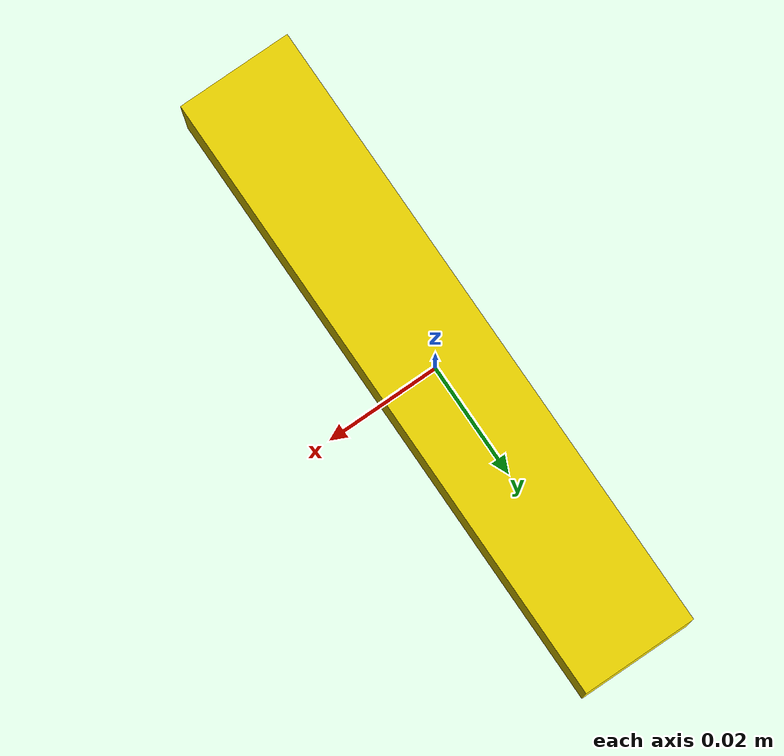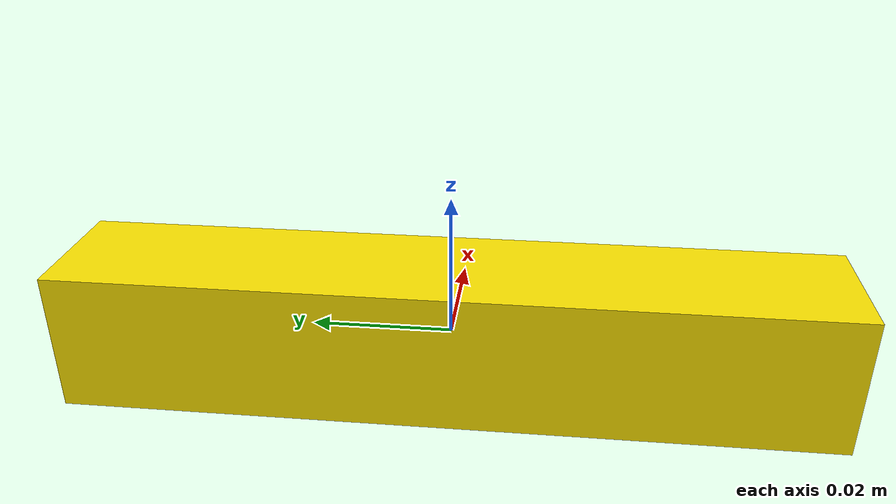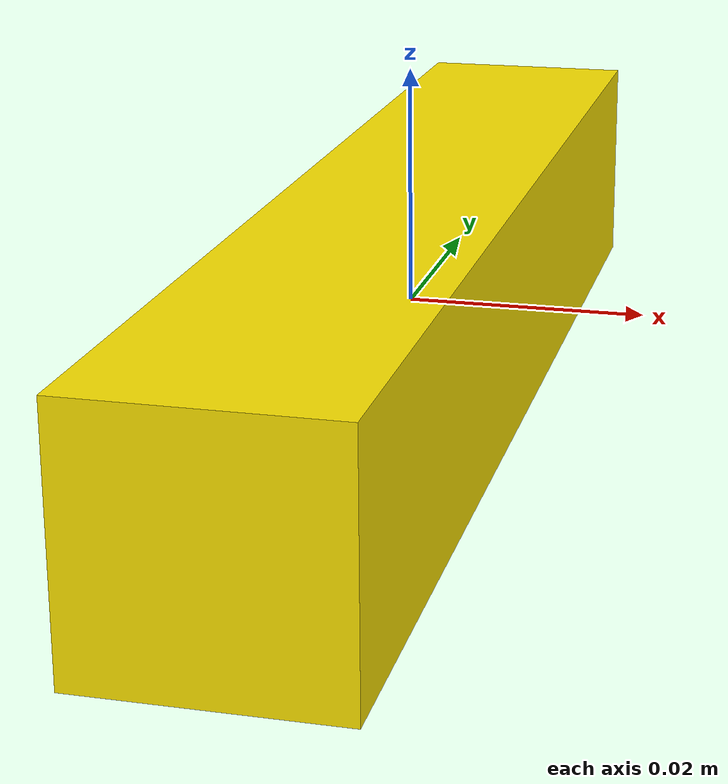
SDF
<?xml version="1.0" ?>
<sdf version="1.5">
  <!-- Banana: box 0.020 x 0.110 x 0.020 → min(x,y) width = 20mm (hand_close=16, requires fix 1.1) -->
  <model name="banana">
    <link name="link">
      <pose>0 0 0 0 0 0</pose>
      <inertial>
        <mass>0.015</mass>
        <inertia>
          <!-- box: ixx=(m/12)*(y²+z²), iyy=(m/12)*(x²+z²), izz=(m/12)*(x²+y²) -->
          <ixx>1.52e-5</ixx>
          <ixy>0</ixy><ixz>0</ixz>
          <iyy>1.78e-5</iyy>
          <iyz>0</iyz>
          <izz>1.59e-5</izz>
        </inertia>
      </inertial>
      <collision name="collision">
        <geometry>
          <box><size>0.020 0.110 0.020</size></box>
        </geometry>
        <surface>
          <contact><ode><kp>1000000</kp><kd>100</kd><max_vel>0.1</max_vel><min_depth>0.001</min_depth></ode></contact>
          <friction><ode><mu>1.0</mu><mu2>1.0</mu2></ode><torsional><coefficient>1.0</coefficient><use_patch_radius>0</use_patch_radius><surface_radius>0.01</surface_radius></torsional></friction>
        </surface>
      </collision>
      <visual name="visual">
        <geometry><box><size>0.020 0.110 0.020</size></box></geometry>
        <material><ambient>1.0 0.9 0.0 1</ambient><diffuse>1.0 0.9 0.0 1</diffuse></material>
      </visual>
    </link>
  </model>
</sdf>
